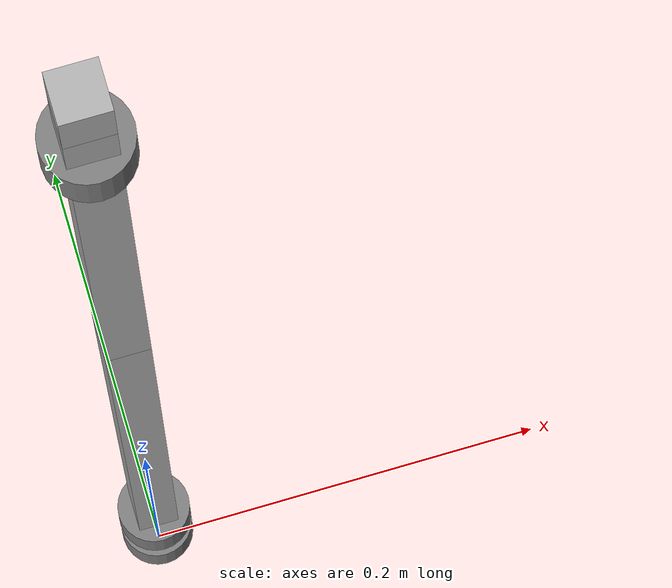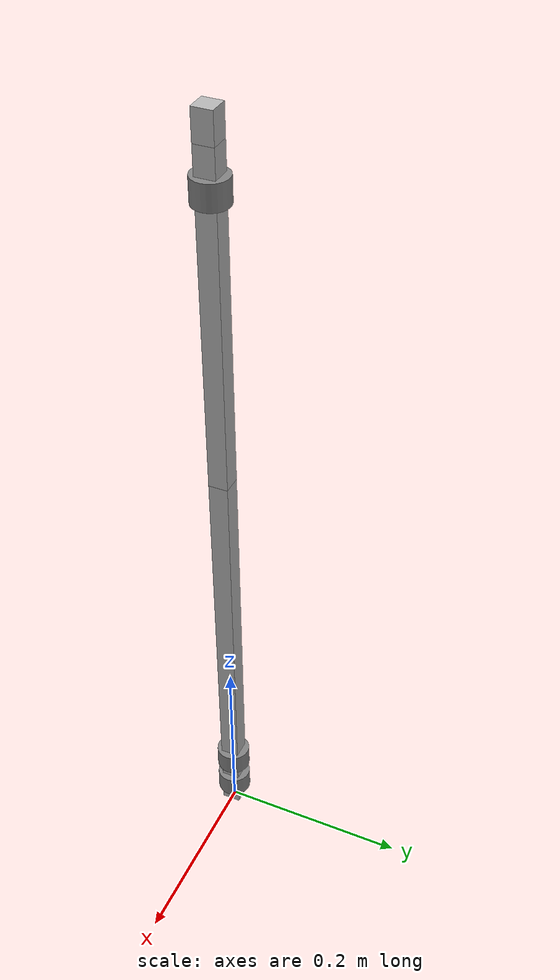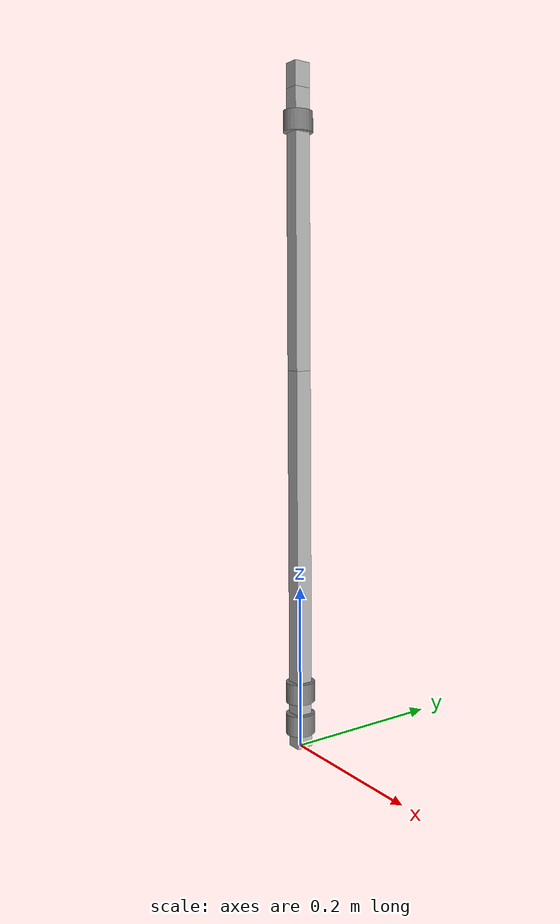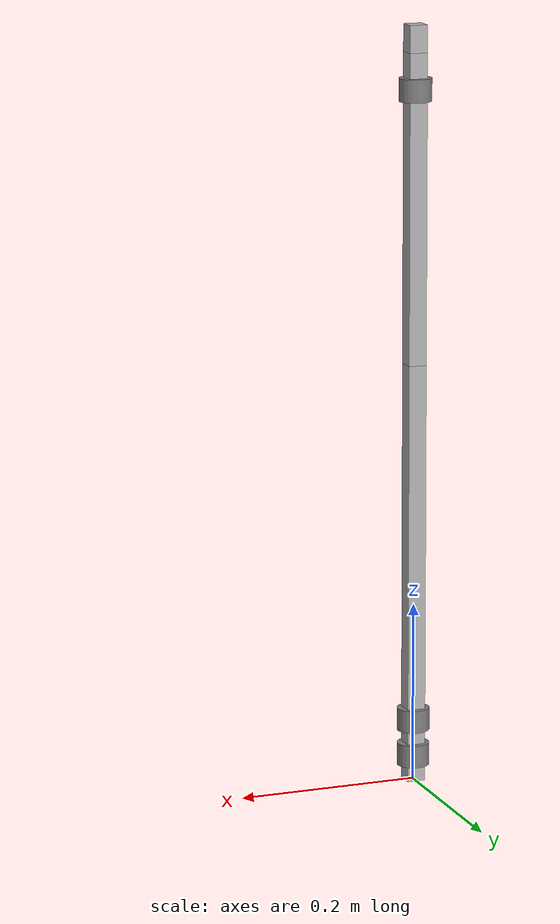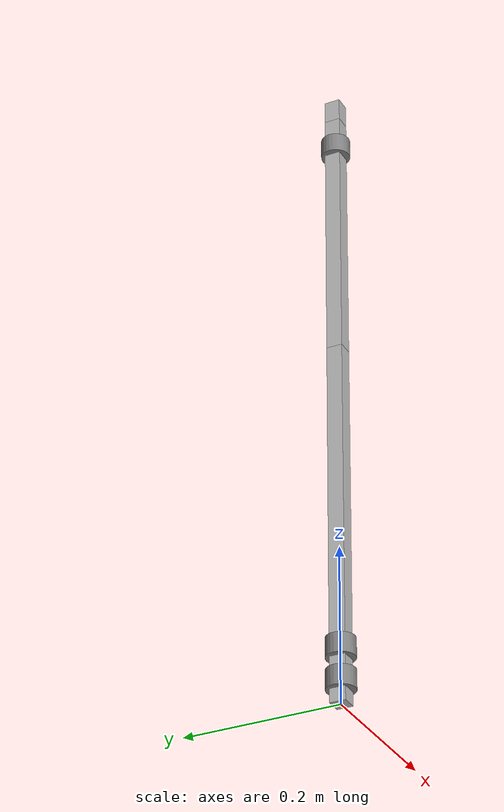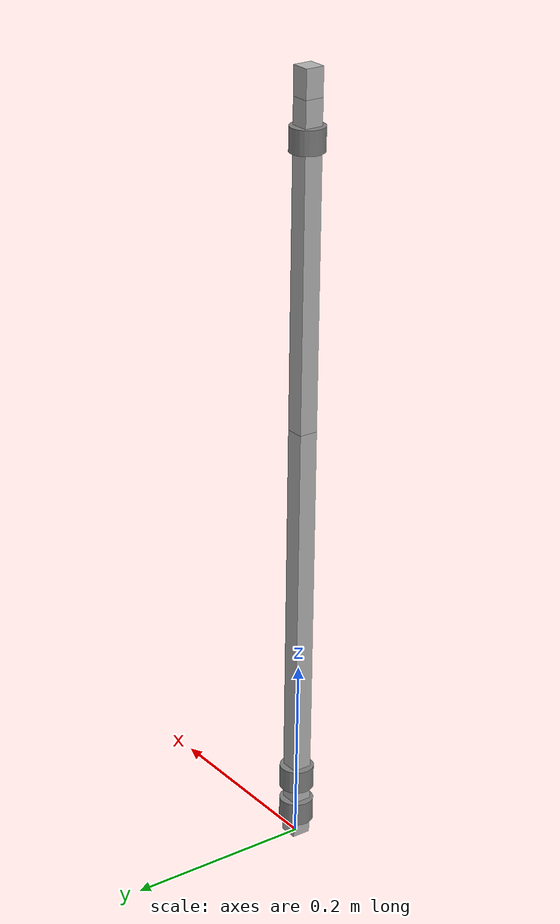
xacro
<?xml version="1.0"?>
<robot name="arm" xmlns:xacro="http://www.ros.org/wiki/xacro">

  <xacro:property name="PI" value="3.14159265359"/>

  <!-- Joints Control in Gazebo -->
  <gazebo>
    <plugin name="gazebo_ros_control" filename="libgazebo_ros_control.so"/>
  </gazebo>

  <!-- Geometrical properties -->
  <xacro:property name="link_side" value="0.02"/>
  <xacro:property name="joint_radius" value="0.018"/>
  <xacro:property name="joint_length" value="0.025"/>
  <xacro:property name="toe_length" value="0.03"/>
  <xacro:property name="foot_length" value="0.04"/>
  <xacro:property name="leg_length" value="0.40"/>
  <xacro:property name="arm_length" value="0.30"/>
  <xacro:property name="hand_length" value="0.04"/>
  <xacro:property name="finger_length" value="0.03"/>

  <!-- Materials -->
  <material name="orange">
    <color rgba="0.70 0.70 0.70 1.00"/>
  </material>

  <material name="gray">
    <color rgba="0.50 0.50 0.50 1.00"/>
  </material>

  <!-- Generates a box visual/collision/inertial -->
  <xacro:macro name="prism_vci" params="side length mass:=1 *origin">

    <xacro:macro name="prism_geometry">
      <xacro:insert_block name="origin"/>
      <geometry>
        <box size="${side} ${side} ${length}"/>
      </geometry>
    </xacro:macro>

    <visual>
      <xacro:prism_geometry/>
      <material name="orange"/>
    </visual>

    <collision>
      <xacro:prism_geometry/>
    </collision>

    <inertial>
      <xacro:insert_block name="origin"/>
      <mass value="${mass}"/>
      <inertia ixx="${(mass/12)*(side*side+length*length)}"
               iyy="${(mass/12)*(side*side+length*length)}"
               izz="${(mass/6)*(side*side)}"
               ixy="0" ixz="0" iyz="0"/>
    </inertial>

  </xacro:macro>

  <!-- Generates a cylinder visual/collision -->
  <xacro:macro name="cylinder_vc" params="radius length *origin">

    <xacro:macro name="cylinder_geometry">
      <xacro:insert_block name="origin"/>
      <geometry>
        <cylinder length="${length}" radius="${radius}"/>
      </geometry>
    </xacro:macro>

    <visual>
      <xacro:cylinder_geometry/>
      <material name="gray"/>
    </visual>

    <collision>
      <xacro:cylinder_geometry/>
    </collision>

  </xacro:macro>

  <!-- Generates child joint of parent -->
  <xacro:macro name="arm_joint" params="child parent dist:=0 axis">

    <joint name="${parent}_${child}_joint" type="revolute">
      <origin xyz="0 0 ${dist}" rpy="0 0 0"/>
      <parent link="${parent}"/>
      <child link="${child}"/>
      <axis xyz="${axis}"/>
      <limit effort="40.0"
             velocity="1.0"
             lower="${-PI}"
             upper="${PI}"/>
    </joint>

    <!-- Required for ROS control -->
    <transmission name="${parent}_${child}_transmission">
      <type>transmission_interface/SimpleTransmission</type>
      <joint name="${parent}_${child}_joint">
        <hardwareInterface>hardware_interface/EffortJointInterface</hardwareInterface>
      </joint>
      <actuator name="${parent}_${child}_actuator"/>
    </transmission>

    <link name="${parent}">

      <xacro:prism_vci length="${dist}" side="${link_side}">
        <origin xyz="0 0 ${dist/2}" rpy="0 0 0"/>
      </xacro:prism_vci>

      <xacro:cylinder_vc radius="${joint_radius}" length="${joint_length}">

        <xacro:if value="${axis=='0 0 1'}">
          <origin xyz="0 0 ${dist}" rpy="0 0 0"/>
        </xacro:if>

        <xacro:if value="${axis=='1 0 0'}">
          <origin xyz="0 0 ${dist}" rpy="0 ${PI/2} 0"/>
        </xacro:if>

        <xacro:if value="${axis=='0 1 0'}">
          <origin xyz="0 0 ${dist}" rpy="${PI/2} 0 0"/>
        </xacro:if>

      </xacro:cylinder_vc>

    </link>

    <gazebo reference="${parent}">
      <material>Gazebo/Orange</material>
    </gazebo>

  </xacro:macro>

  <!-- Generates child joint of parent -->
  <xacro:macro name="arm_joint_fix" params="child parent dist:=0 axis">

    <joint name="${parent}_${child}_joint" type="fixed">
      <origin xyz="0 0 ${dist}" rpy="0 0 0"/>
      <parent link="${parent}"/>
      <child link="${child}"/>
      <axis xyz="${axis}"/>
      <limit effort="40.0"
             velocity="1.0"
             lower="${-PI}"
             upper="${PI}"/>
    </joint>

    <!-- Required for ROS control -->
    <transmission name="${parent}_${child}_transmission">
      <type>transmission_interface/SimpleTransmission</type>
      <joint name="${parent}_${child}_joint">
        <hardwareInterface>hardware_interface/EffortJointInterface</hardwareInterface>
      </joint>
      <actuator name="${parent}_${child}_actuator"/>
    </transmission>

    <link name="${parent}">

      <xacro:prism_vci length="${dist}" side="${link_side}">
        <origin xyz="0 0 ${dist/2}" rpy="0 0 0"/>
      </xacro:prism_vci>

      <xacro:cylinder_vc radius="${joint_radius}" length="${joint_length}">

        <xacro:if value="${axis=='0 0 1'}">
          <origin xyz="0 0 ${dist}" rpy="0 0 0"/>
        </xacro:if>

        <xacro:if value="${axis=='1 0 0'}">
          <origin xyz="0 0 ${dist}" rpy="0 ${PI/2} 0"/>
        </xacro:if>

        <xacro:if value="${axis=='0 1 0'}">
          <origin xyz="0 0 ${dist}" rpy="${PI/2} 0 0"/>
        </xacro:if>

      </xacro:cylinder_vc>

    </link>

    <gazebo reference="${parent}">
      <material>Gazebo/Orange</material>
    </gazebo>

  </xacro:macro>

  <!-- World frame (for Gazebo) -->
  <link name="world"/>

  <!-- Arm fixed to world frame  -->
  <joint name="world_foot_joint" type="fixed">
    <parent link="world"/>
    <child link="toe"/>
  </joint>

  <!-- Joints Chain -->
  <xacro:arm_joint_fix parent="toe" child="foot" axis="0 0 1" dist="${toe_length}"/>
  <xacro:arm_joint parent="foot" child="leg" axis="1 0 0" dist="${foot_length}"/>
  <xacro:arm_joint parent="leg" child="arm" axis="1 0 0" dist="${leg_length}"/>
  <xacro:arm_joint parent="arm" child="hand" axis="0 0 1" dist="${arm_length}"/>
  <xacro:arm_joint parent="hand" child="finger" axis="1 0 0" dist="${hand_length}"/>

  <!-- End effector -->
  <link name="finger">
    <xacro:prism_vci length="${finger_length}" side="${link_side}">
      <origin xyz="0 0 ${finger_length/2}" rpy="0 0 0"/>
    </xacro:prism_vci>
  </link>

  <gazebo reference="finger">
    <material>Gazebo/Red</material>
  </gazebo>

</robot>
